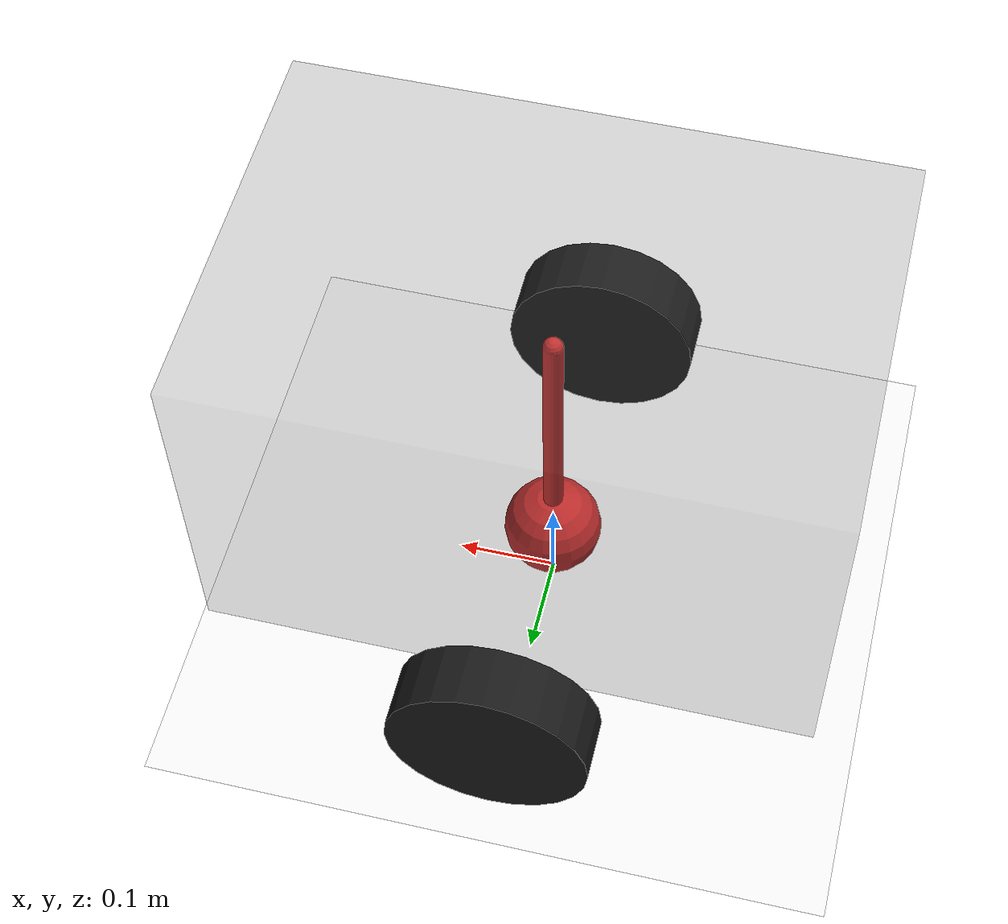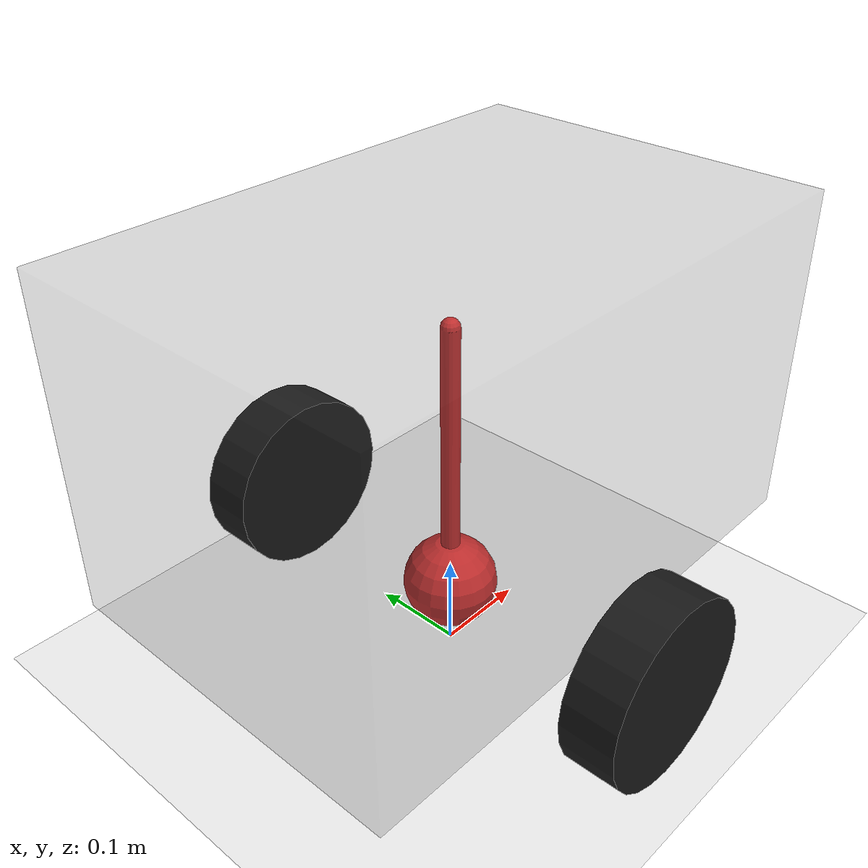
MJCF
<mujoco model="cartpole-wheels-nofric">
    <!-- fast & stable defaults -->
    <option integrator="RK4" timestep="0.002"/>
    <compiler angle="degree" coordinate="local"/>

    <!-- no contact friction anywhere -->
    <default>
      <geom type="box" rgba="0.7 0.7 0.7 1" friction="0 0 0" solref="0.002 1" solimp="0.9 0.95 0.001"/>
      <joint damping="0" frictionloss="0"/>
      <motor gear="1"/>
    </default>

    <asset>
      <texture name="grid" type="2d" builtin="checker" width="512" height="512" rgb1="0.8 0.9 1" rgb2="0.7 0.8 0.9"/>
      <material name="mat" texture="grid" texrepeat="6 6" specular="0.3" shininess="0.5"/>
    </asset>

    <worldbody>
      <!-- ground just for visuals (friction is zero anyway) -->
      <geom name="floor" type="plane" size="50 50 1" material="mat" rgba="0.95 0.95 0.95 1"/>

      <!-- Cart: slides in x with zero damping/friction -->
      <body name="cart" pos="0 0 0.3">
        <joint name="slider" type="slide" axis="1 0 0" limited="false"/>
        <!-- cart chassis -->
        <geom name="cart_box" type="box" size="0.30 0.2 0.18" rgba="0.2 0.2 0.2 0.2" mass="0.5"/>

        <!-- Left wheel (visual + free-spinning hinge, no contact friction) -->
        <body name="wheel_L" pos="0 -0.25 -0.20">
          <joint name="wheel_L_hinge" type="hinge" axis="0 1 0"/>
          <!-- Cylinder axis is local z; rotate so z->y (wheel spins about y) -->
          <geom name="wheel_L_geom" type="cylinder" size="0.1 0.03" euler="-90 0 0" rgba="0.1 0.1 0.1 1" mass="0.05"/>
        </body>

        <!-- Right wheel -->
        <body name="wheel_R" pos="0 0.25 -0.2">
          <joint name="wheel_R_hinge" type="hinge" axis="0 1 0"/>
          <geom name="wheel_R_geom" type="cylinder" size="0.1 0.03" euler="-90 0 0" rgba="0.1 0.1 0.1 1" mass="0.05"/>
        </body>

        <!-- Pole: hinge about y so motion is in the x–z plane -->
          <!-- Comment: Capsule along local z by default: length = 2*fromto distance -->
        <!-- Pole: hinge at base; mass concentrated at tip (classical cart-pole) -->
        <body name="pole_base" pos="0 0 0.08">
            <!-- Hinge so motion is in x–z plane -->
            <joint name="hinge" type="hinge" axis="0 -1 0" limited="false"/>

            <!-- Visual rod: nearly massless capsule (tiny mass to avoid singular inertia) -->
            <!-- length = 0.5 m; radius = 0.02 m -->
            <geom name="pole_rod" type="capsule"
                fromto="0 0 0  0 0 -0.3"
                size="0.01"
                rgba="0.9 0.2 0.2 1"
                mass="0.016"/>

            <!-- Tip body at z = 0.5 carrying (almost) all pole mass -->
            <body name="pole_tip" pos="0.0 0 -0.3">
            <!-- No joint here => rigidly follows the hinge above -->
            <!-- Sphere as point mass proxy; choose the total pole mass you want, e.g., 0.1 kg -->
            <geom name="pole_tip_mass" type="sphere" size="0.05" mass="0.3" rgba="0.9 0.2 0.2 1"/>
            </body>
        </body>

      </body>

    </worldbody>

    <actuator>
      <!-- Single input: horizontal force on cart -->
      <motor name="cart_force" joint="slider" ctrllimited="true" ctrlrange="-10 10"/>
    </actuator>

    <sensor>
      <jointpos name="x" joint="slider"/>
      <jointvel name="x_dot" joint="slider"/>
      <jointpos name="theta" joint="hinge"/>
      <jointvel name="theta_dot" joint="hinge"/>
    </sensor>
  </mujoco>
